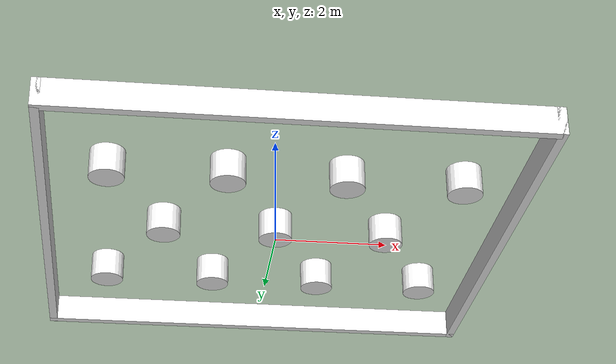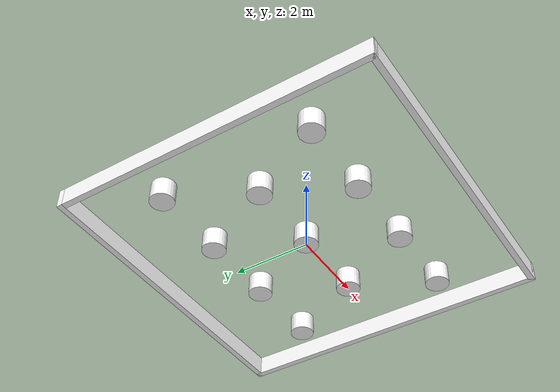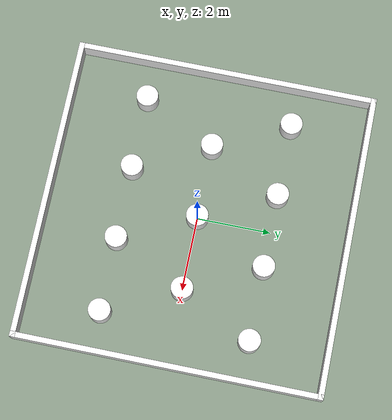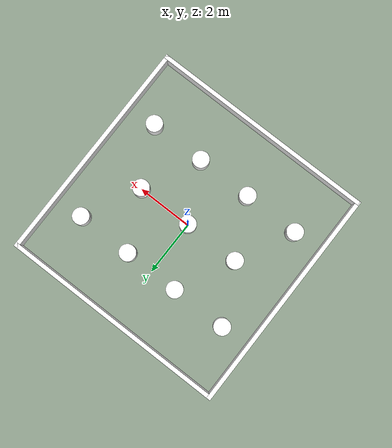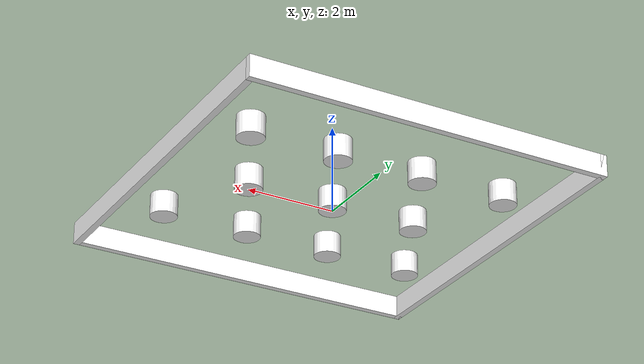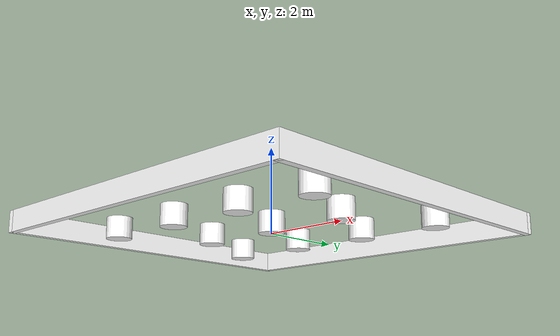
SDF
<?xml version='1.0'?>
<sdf version='1.6'>
  <model name='simple'>
    <link name='fixed'></link>
    <pose frame=''>0 0 0 0 -0 0</pose>
    <link name='Wall_0'>
      <collision name='Wall_0_Collision'>
        <geometry>
          <box>
            <size>8.3 0.15 0.5</size>
          </box>
        </geometry>
        <pose frame=''>0 0 0.25 0 -0 0</pose>
      </collision>
      <visual name='Wall_0_Visual'>
        <pose frame=''>0 0 0.25 0 -0 0</pose>
        <geometry>
          <box>
            <size>8.3 0.15 0.5</size>
          </box>
        </geometry>
        <material>
          <ambient>1 1 1 1</ambient>
        </material>
      </visual>
      <pose frame=''>0 4.075 0 0 -0 0</pose>
    </link>
    <link name='Wall_2'>
      <collision name='Wall_2_Collision'>
        <geometry>
          <box>
            <size>8.3 0.15 0.5</size>
          </box>
        </geometry>
        <pose frame=''>0 0 0.25 0 -0 0</pose>
      </collision>
      <visual name='Wall_2_Visual'>
        <pose frame=''>0 0 0.25 0 -0 0</pose>
        <geometry>
          <box>
            <size>8.3 0.15 0.5</size>
          </box>
        </geometry>
        <material>
          <ambient>1 1 1 1</ambient>
        </material>
      </visual>
      <pose frame=''>-4.075 0 0 0 0 -1.5708</pose>
    </link>
    <link name='Wall_3'>
      <collision name='Wall_3_Collision'>
        <geometry>
          <box>
            <size>8.3 0.15 0.5</size>
          </box>
        </geometry>
        <pose frame=''>0 0 0.25 0 -0 0</pose>
      </collision>
      <visual name='Wall_3_Visual'>
        <pose frame=''>0 0 0.25 0 -0 0</pose>
        <geometry>
          <box>
            <size>8.3 0.15 0.5</size>
          </box>
        </geometry>
        <material>
          <ambient>1 1 1 1</ambient>
        </material>
      </visual>
      <pose frame=''>0 -4.075 0 0 -0 0</pose>
    </link>
    <link name='Wall_4'>
      <collision name='Wall_4_Collision'>
        <geometry>
          <box>
            <size>8.3 0.15 0.5</size>
          </box>
        </geometry>
        <pose frame=''>0 0 0.25 0 -0 0</pose>
      </collision>
      <visual name='Wall_4_Visual'>
        <pose frame=''>0 0 0.25 0 -0 0</pose>
        <geometry>
          <box>
            <size>8.3 0.15 0.5</size>
          </box>
        </geometry>
        <material>
          <ambient>1 1 1 1</ambient>
        </material>
      </visual>
      <pose frame=''>4.075 0 0 0 -0 1.5708</pose>
    </link>

    <link name='Cylinder_1'>
      <collision name='Cylinder_1_Collision'>
        <geometry>
          <cylinder>
            <radius>0.3</radius>
            <length>0.5</length>
          </cylinder>
        </geometry>
        <pose frame=''>0 0 0.25 0 -0 0</pose>
      </collision>
      <visual name='Cylinder_1_Visual'>
        <pose frame=''>0 0 0.25 0 -0 0</pose>
        <geometry>
          <cylinder>
            <radius>0.3</radius>
            <length>0.5</length>
          </cylinder>
        </geometry>
        <material>
          <ambient>1 1 1 1</ambient>
        </material>
      </visual>
      <pose frame=''>0 0 0 0 0 0</pose>
    </link>
    <link name='Cylinder_2'>
      <collision name='Cylinder_2_Collision'>
        <geometry>
          <cylinder>
            <radius>0.3</radius>
            <length>0.5</length>
          </cylinder>
        </geometry>
        <pose frame=''>0 0 0.25 0 -0 0</pose>
      </collision>
      <visual name='Cylinder_2_Visual'>
        <pose frame=''>0 0 0.25 0 -0 0</pose>
        <geometry>
          <cylinder>
            <radius>0.3</radius>
            <length>0.5</length>
          </cylinder>
        </geometry>
        <material>
          <ambient>1 1 1 1</ambient>
        </material>
      </visual>
      <pose frame=''>-2 0 0 0 0 0</pose>
    </link>
    <link name='Cylinder_3'>
      <collision name='Cylinder_3_Collision'>
        <geometry>
          <cylinder>
            <radius>0.3</radius>
            <length>0.5</length>
          </cylinder>
        </geometry>
        <pose frame=''>0 0 0.25 0 -0 0</pose>
      </collision>
      <visual name='Cylinder_3_Visual'>
        <pose frame=''>0 0 0.25 0 -0 0</pose>
        <geometry>
          <cylinder>
            <radius>0.3</radius>
            <length>0.5</length>
          </cylinder>
        </geometry>
        <material>
          <ambient>1 1 1 1</ambient>
        </material>
      </visual>
      <pose frame=''>2 0 0 0 0 0</pose>
    </link>
    <link name='Cylinder_4'>
      <collision name='Cylinder_4_Collision'>
        <geometry>
          <cylinder>
            <radius>0.3</radius>
            <length>0.5</length>
          </cylinder>
        </geometry>
        <pose frame=''>0 0 0.25 0 -0 0</pose>
      </collision>
      <visual name='Cylinder_4_Visual'>
        <pose frame=''>0 0 0.25 0 -0 0</pose>
        <geometry>
          <cylinder>
            <radius>0.3</radius>
            <length>0.5</length>
          </cylinder>
        </geometry>
        <material>
          <ambient>1 1 1 1</ambient>
        </material>
      </visual>
      <pose frame=''>-1 2 0 0 0 0</pose>
    </link>
    <link name='Cylinder_5'>
      <collision name='Cylinder_5_Collision'>
        <geometry>
          <cylinder>
            <radius>0.3</radius>
            <length>0.5</length>
          </cylinder>
        </geometry>
        <pose frame=''>0 0 0.25 0 -0 0</pose>
      </collision>
      <visual name='Cylinder_5_Visual'>
        <pose frame=''>0 0 0.25 0 -0 0</pose>
        <geometry>
          <cylinder>
            <radius>0.3</radius>
            <length>0.5</length>
          </cylinder>
        </geometry>
        <material>
          <ambient>1 1 1 1</ambient>
        </material>
      </visual>
      <pose frame=''>1 2 0 0 0 0</pose>
    </link>
    <link name='Cylinder_6'>
      <collision name='Cylinder_6_Collision'>
        <geometry>
          <cylinder>
            <radius>0.3</radius>
            <length>0.5</length>
          </cylinder>
        </geometry>
        <pose frame=''>0 0 0.25 0 -0 0</pose>
      </collision>
      <visual name='Cylinder_6_Visual'>
        <pose frame=''>0 0 0.25 0 -0 0</pose>
        <geometry>
          <cylinder>
            <radius>0.3</radius>
            <length>0.5</length>
          </cylinder>
        </geometry>
        <material>
          <ambient>1 1 1 1</ambient>
        </material>
      </visual>
      <pose frame=''>1 -2 0 0 0 0</pose>
    </link>
    <link name='Cylinder_7'>
      <collision name='Cylinder_7_Collision'>
        <geometry>
          <cylinder>
            <radius>0.3</radius>
            <length>0.5</length>
          </cylinder>
        </geometry>
        <pose frame=''>0 0 0.25 0 -0 0</pose>
      </collision>
      <visual name='Cylinder_7_Visual'>
        <pose frame=''>0 0 0.25 0 -0 0</pose>
        <geometry>
          <cylinder>
            <radius>0.3</radius>
            <length>0.5</length>
          </cylinder>
        </geometry>
        <material>
          <ambient>1 1 1 1</ambient>
        </material>
      </visual>
      <pose frame=''>-1 -2 0 0 0 0</pose>
    </link>
    <link name='Cylinder_8'>
      <collision name='Cylinder_8_Collision'>
        <geometry>
          <cylinder>
            <radius>0.3</radius>
            <length>0.5</length>
          </cylinder>
        </geometry>
        <pose frame=''>0 0 0.25 0 -0 0</pose>
      </collision>
      <visual name='Cylinder_8_Visual'>
        <pose frame=''>0 0 0.25 0 -0 0</pose>
        <geometry>
          <cylinder>
            <radius>0.3</radius>
            <length>0.5</length>
          </cylinder>
        </geometry>
        <material>
          <ambient>1 1 1 1</ambient>
        </material>
      </visual>
      <pose frame=''>-3 2 0 0 0 0</pose>
    </link>
    <link name='Cylinder_9'>
      <collision name='Cylinder_9_Collision'>
        <geometry>
          <cylinder>
            <radius>0.3</radius>
            <length>0.5</length>
          </cylinder>
        </geometry>
        <pose frame=''>0 0 0.25 0 -0 0</pose>
      </collision>
      <visual name='Cylinder_9_Visual'>
        <pose frame=''>0 0 0.25 0 -0 0</pose>
        <geometry>
          <cylinder>
            <radius>0.3</radius>
            <length>0.5</length>
          </cylinder>
        </geometry>
        <material>
          <ambient>1 1 1 1</ambient>
        </material>
      </visual>
      <pose frame=''>3 2 0 0 0 0</pose>
    </link>
    <link name='Cylinder_10'>
      <collision name='Cylinder_10_Collision'>
        <geometry>
          <cylinder>
            <radius>0.3</radius>
            <length>0.5</length>
          </cylinder>
        </geometry>
        <pose frame=''>0 0 0.25 0 -0 0</pose>
      </collision>
      <visual name='Cylinder_10_Visual'>
        <pose frame=''>0 0 0.25 0 -0 0</pose>
        <geometry>
          <cylinder>
            <radius>0.3</radius>
            <length>0.5</length>
          </cylinder>
        </geometry>
        <material>
          <ambient>1 1 1 1</ambient>
        </material>
      </visual>
      <pose frame=''>3 -2 0 0 0 0</pose>
    </link>
    <link name='Cylinder_11'>
      <collision name='Cylinder_11_Collision'>
        <geometry>
          <cylinder>
            <radius>0.3</radius>
            <length>0.5</length>
          </cylinder>
        </geometry>
        <pose frame=''>0 0 0.25 0 -0 0</pose>
      </collision>
      <visual name='Cylinder_11_Visual'>
        <pose frame=''>0 0 0.25 0 -0 0</pose>
        <geometry>
          <cylinder>
            <radius>0.3</radius>
            <length>0.5</length>
          </cylinder>
        </geometry>
        <material>
          <ambient>1 1 1 1</ambient>
        </material>
      </visual>
      <pose frame=''>-3 -2 0 0 0 0</pose>
    </link>
    <static>1</static>
  </model>
</sdf>
